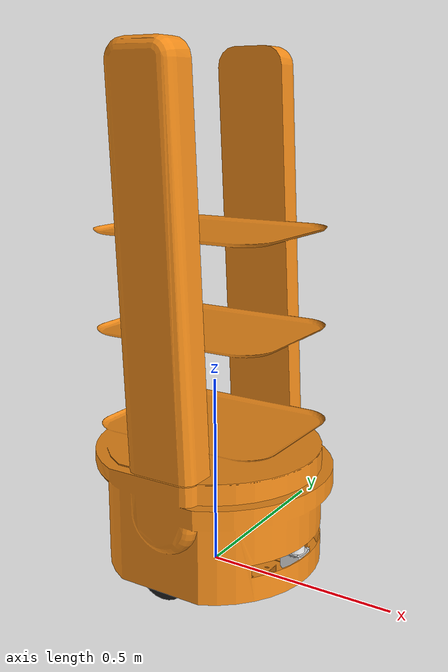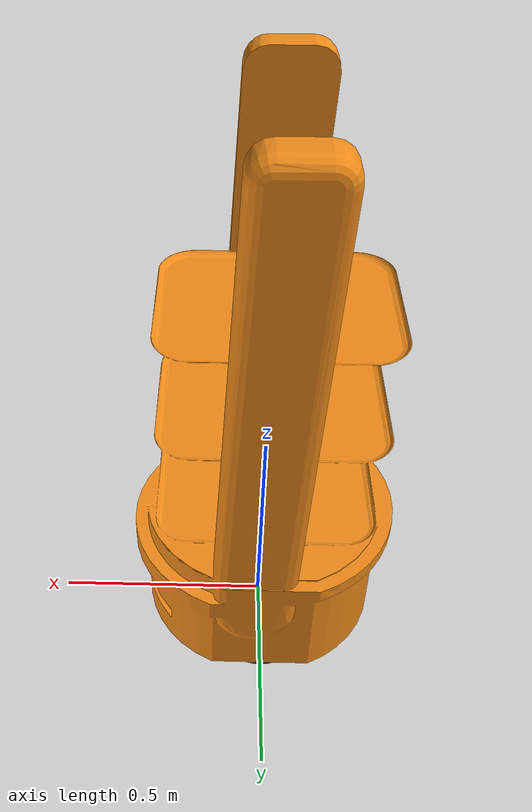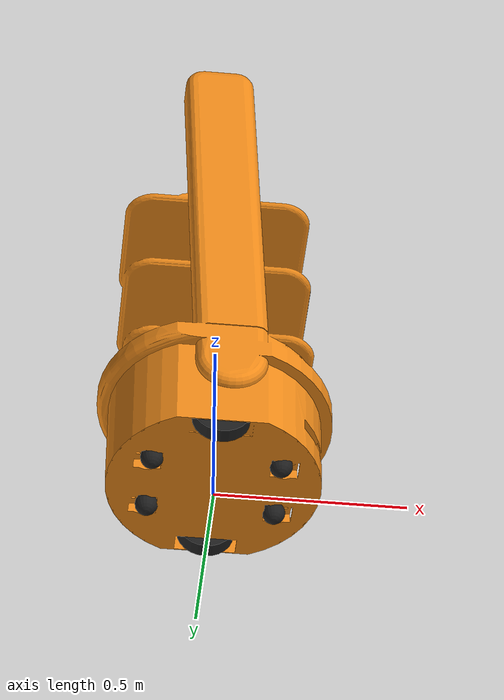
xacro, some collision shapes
<?xml version='1.0'?>
<robot name="rooster" xmlns:xacro="http://www.ros.org/wiki/xacro">

  <!-- ================== Includes ================== -->
  <xacro:include filename="$(find mobile_robot_description)/models/rooster/urdf/rooster.gazebo.xacro" />
  <xacro:include filename="$(find mobile_robot_description)/models/rooster/urdf/materials.xacro" />

  <!--
    Robot Structure Overview:
    - Chassis (base)
    - 4 Caster links (non-driven support wheels)
    - Left & Right drive wheels
    - Lidar sensor
  -->

  <!-- ================== Base / Chassis ======================= -->
  <link name="chassis">
    <inertial>
      <mass value="30"/>
      <origin xyz="0 0 0" rpy="0 0 0"/>
      <inertia
        ixx="4.9887479320299" ixy="-0.000665021365264802" ixz="0.117153222467253"
        iyy="3.29577614857709" iyz="9.17818860502157E-07"
        izz="2.8376872224854"/>
    </inertial>

    <!-- Chassis Visual -->
    <visual>
      <origin xyz="0 0 0" rpy="0 0 0"/>
      <geometry><mesh filename="file://$(find mobile_robot_description)/models/rooster/meshes/chassis_link.stl"/></geometry>
      <material name="orange"></material>
    </visual>

    <!-- Chassis Collision (bbox primitive, see scripts/inspect_mesh.py) -->
    <collision>
      <origin xyz="0 0 0.6782" rpy="0 0 0"/>
      <geometry><box size="0.6146 0.5660 1.3060"/></geometry>
    </collision>
  </link>

  <!-- =============== Casters (Support Spheres) =============== -->

  <!-- Caster Template -->
  <xacro:macro name="caster" params="name x y z">
    <link name="${name}_link">
      <inertial>
        <mass value="0.5"/>
        <origin xyz="0 0 0"/>
        <inertia ixx="0.00018" ixy="0" ixz="0"
                 iyy="0.00018" iyz="0"
                 izz="0.00018"/>
      </inertial>
      <visual>
        <origin xyz="0 0 0" rpy="0 0 0"/>
        <geometry><sphere radius="0.03"/></geometry>
        <material name="black"></material>
      </visual>
      <collision>
        <origin xyz="0 0 0" rpy="0 0 0"/>
        <geometry><sphere radius="0.03"/></geometry>
        <surface>
          <friction>
            <ode>
              <mu>0.5</mu>
              <mu2>0.5</mu2>
              <slip1>0.01</slip1>
              <slip2>0.01</slip2>
            </ode>
          </friction>
        </surface>
      </collision>
    </link>

    <joint name="${name}_joint" type="continuous">
      <parent link="chassis"/>
      <child link="${name}_link"/>
      <origin xyz="${x} ${y} ${z}" rpy="0 0 0"/>
      <axis xyz="0 0 1"/>
    </joint>
  </xacro:macro>

  <!-- Instantiate 4 Casters -->
  <xacro:caster name="caster_front_left"  x="-0.165" y="0.09"  z="0.031"/>
  <xacro:caster name="caster_front_right" x="0.165"  y="0.09"  z="0.031"/>
  <xacro:caster name="caster_rear_left"   x="-0.165" y="-0.09" z="0.031"/>
  <xacro:caster name="caster_rear_right"  x="0.165"  y="-0.09" z="0.031"/>

  <!-- ======================== Wheels ========================= -->

  <!-- Left Wheel -->
  <link name="left_wheel_link">
    <inertial>
      <mass value="0.238"/>
      <origin xyz="0 0 0"/>
      <inertia ixx="0.00043" ixy="0" ixz="0"
               iyy="0.00081" iyz="0" izz="0.00043"/>
    </inertial>
    <visual>
      <origin xyz="0 0 0"/>
      <geometry><mesh filename="file://$(find mobile_robot_description)/models/rooster/meshes/wheel_link.stl"/></geometry>
      <material name="black"></material>
    </visual>
    <!-- Cylinder collision along Y (axle), see scripts/inspect_mesh.py -->
    <collision>
      <origin xyz="0 -0.0205 0" rpy="${pi/2} 0 0"/>
      <geometry><cylinder radius="0.0744" length="0.0410"/></geometry>
    </collision>
  </link>

  <!-- Left Wheel Joint -->
  <joint name="left_wheel_joint" type="continuous">
    <origin xyz="0 0.241 0.074" rpy="0 0 0"/>
    <parent link="chassis"/>
    <child link="left_wheel_link"/>
    <axis xyz="0 1 0"/>
    <limit effort="20000" velocity="2.5"/>
    <dynamics damping="0.1" friction="1.0"/>
  </joint>

  <!-- Right Wheel -->
  <link name="right_wheel_link">
    <inertial>
      <mass value="0.238"/>
      <origin xyz="0 0 0"/>
      <inertia ixx="0.00043" ixy="0" ixz="0"
               iyy="0.00081" iyz="0" izz="0.00043"/>
    </inertial>
    <visual>
      <!-- Flip mesh along Y so the wheel sits inboard (mesh is modeled with Y in [-0.041, 0]) -->
      <origin xyz="0 0 0" rpy="${pi} 0 0"/>
      <geometry><mesh filename="file://$(find mobile_robot_description)/models/rooster/meshes/wheel_link.stl"/></geometry>
      <material name="black"></material>
    </visual>
    <!-- Cylinder collision along Y (axle), see scripts/inspect_mesh.py -->
    <collision>
      <origin xyz="0 0.0205 0" rpy="${pi/2} 0 0"/>
      <geometry><cylinder radius="0.0744" length="0.0410"/></geometry>
    </collision>
  </link>

  <!-- Right Wheel Joint -->
  <joint name="right_wheel_joint" type="continuous">
    <origin xyz="0 -0.241 0.074" rpy="0 0 0"/>
    <parent link="chassis"/>
    <child link="right_wheel_link"/>
    <axis xyz="0 1 0"/>
    <limit effort="20000" velocity="2.5"/>
    <dynamics damping="0.1" friction="1.0"/>
  </joint>

  <!-- =================== IMU Sensor ======================== -->
  <link name="imu_link"/>

  <joint name="imu_joint" type="fixed">
    <parent link="chassis"/>
    <child link="imu_link"/>
    <origin xyz="0 0 0.3" rpy="0 0 0"/>
  </joint>

  <!-- =================== Lidar Sensor ======================== -->
  <link name="lidar_link">
    <inertial>
      <mass value="0"/>
      <origin xyz="0 0 0"/>
      <inertia ixx="0" ixy="0" ixz="0" iyy="0" iyz="0" izz="0"/>
    </inertial>
    <visual>
      <origin xyz="0 0 0"/>
      <geometry><mesh filename="file://$(find mobile_robot_description)/models/rooster/meshes/lidar_link.stl"/></geometry>
      <material name="white"></material>
    </visual>
    <!-- Cylinder collision along Z, see scripts/inspect_mesh.py -->
    <collision>
      <origin xyz="-0.0227 0 -0.0069" rpy="0 0 0"/>
      <geometry><cylinder radius="0.0303" length="0.0877"/></geometry>
    </collision>
  </link>

  <!-- Lidar Joint -->
  <joint name="lidar_joint" type="fixed">
    <origin xyz="0.265 0 0.089" rpy="0 0 0"/>
    <parent link="chassis"/>
    <child link="lidar_link"/>
    <axis xyz="0 0 0"/>
  </joint>
  <!-- ================== End Lidar ================== -->
</robot>
